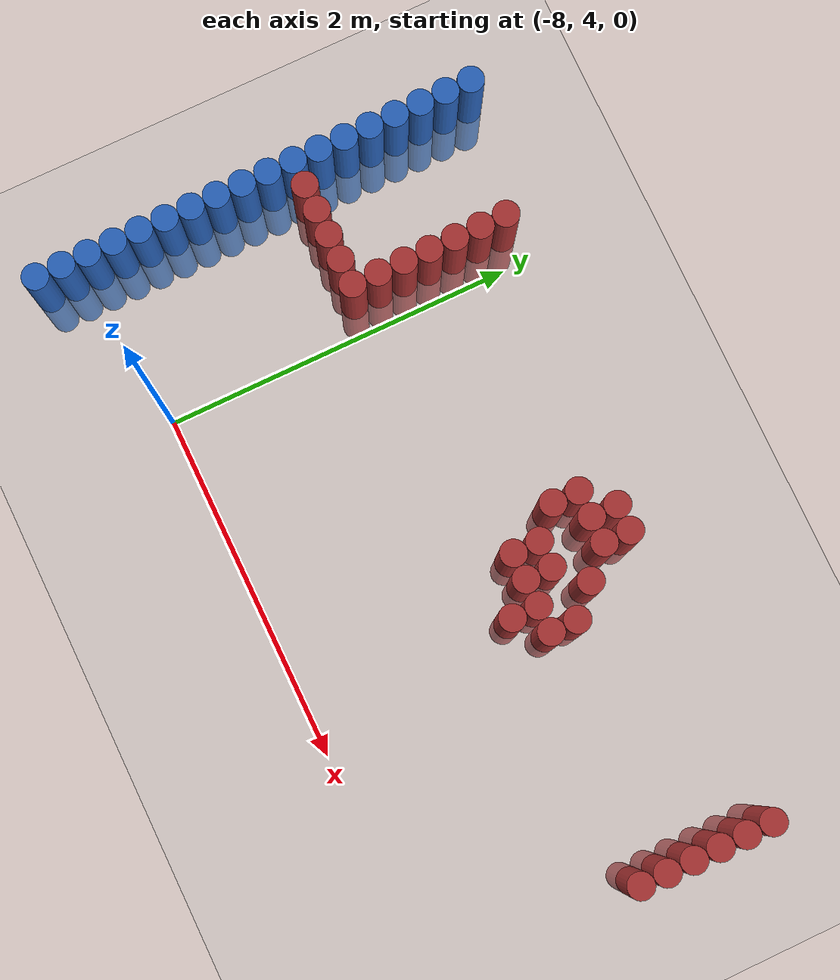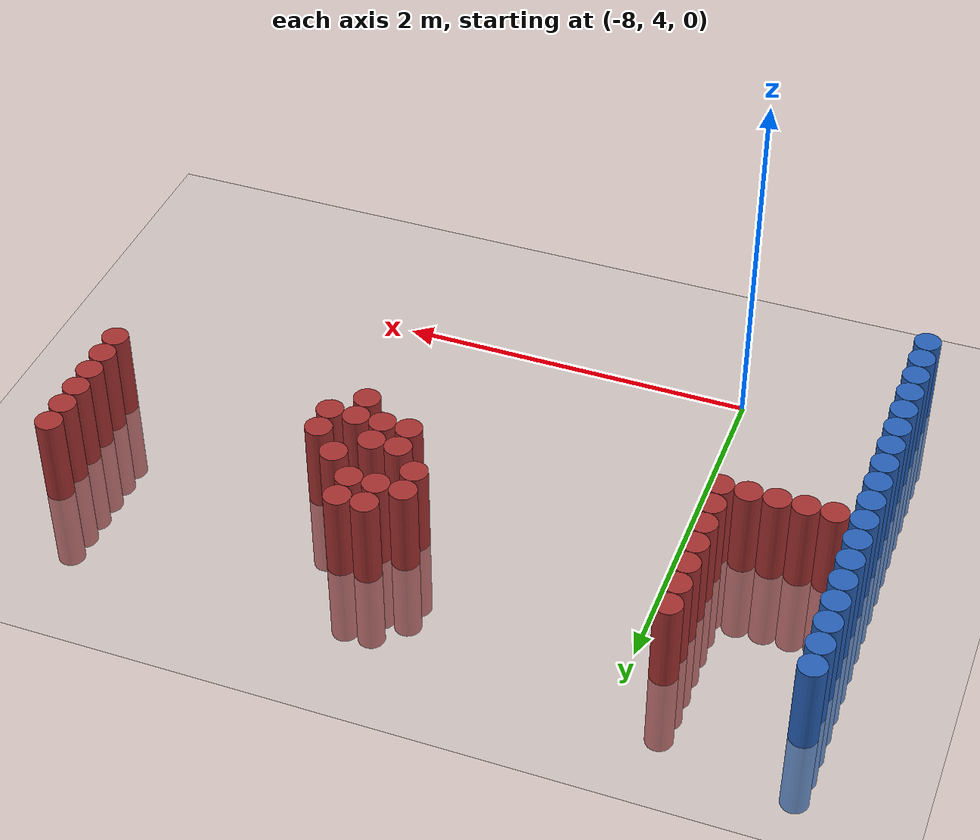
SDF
<sdf version="1.6">
 <world name="default">
  <model name="ground_plane">
   <static>1</static>
   <link name="link">
    <collision name="collision">
     <geometry><plane><normal>0 0 1</normal><size>100 100</size></plane></geometry>
     <surface><friction><ode><mu>100</mu><mu2>50</mu2></ode></friction></surface>
    </collision>
    <visual name="visual">
     <cast_shadows>0</cast_shadows>
     <geometry><plane><normal>0 0 1</normal><size>100 100</size></plane></geometry>
     <material>
      <script><uri>file://media/materials/scripts/gazebo.material</uri><name>Gazebo/Grey</name></script>
     </material>
    </visual>
   </link>
  </model>
  <model name="unit_cylinder_106">
   <static>1</static>
   <pose>-8.925000 3.675000 0.000000 0.000000 0.000000 0.000000</pose>
   <link name="link">
    <inertial>
     <mass>1</mass>
     <inertia><ixx>0.145833</ixx><ixy>0</ixy><ixz>0</ixz><iyy>0.145833</iyy><iyz>0</iyz><izz>0.125</izz></inertia>
    </inertial>
    <collision name="collision">
     <geometry><cylinder><radius>0.075000</radius><length>1</length></cylinder></geometry>
    </collision>
    <visual name="visual">
     <geometry><cylinder><radius>0.075000</radius><length>1</length></cylinder></geometry>
     <material>
      <ambient>0.152000 0.379000 0.720000 1</ambient>
      <diffuse>0.152000 0.379000 0.720000 1</diffuse>
     </material>
     <material>
      <script><name>Gazebo/Grey</name><uri>file://media/materials/scripts/gazebo.material</uri></script>
     </material>
    </visual>
   </link>
  </model>
  <model name="unit_cylinder_108">
   <static>1</static>
   <pose>-8.925000 3.825000 0.000000 0.000000 0.000000 0.000000</pose>
   <link name="link">
    <inertial>
     <mass>1</mass>
     <inertia><ixx>0.145833</ixx><ixy>0</ixy><ixz>0</ixz><iyy>0.145833</iyy><iyz>0</iyz><izz>0.125</izz></inertia>
    </inertial>
    <collision name="collision">
     <geometry><cylinder><radius>0.075000</radius><length>1</length></cylinder></geometry>
    </collision>
    <visual name="visual">
     <geometry><cylinder><radius>0.075000</radius><length>1</length></cylinder></geometry>
     <material>
      <ambient>0.152000 0.379000 0.720000 1</ambient>
      <diffuse>0.152000 0.379000 0.720000 1</diffuse>
     </material>
     <material>
      <script><name>Gazebo/Grey</name><uri>file://media/materials/scripts/gazebo.material</uri></script>
     </material>
    </visual>
   </link>
  </model>
  <model name="unit_cylinder_110">
   <static>1</static>
   <pose>-8.925000 3.975000 0.000000 0.000000 0.000000 0.000000</pose>
   <link name="link">
    <inertial>
     <mass>1</mass>
     <inertia><ixx>0.145833</ixx><ixy>0</ixy><ixz>0</ixz><iyy>0.145833</iyy><iyz>0</iyz><izz>0.125</izz></inertia>
    </inertial>
    <collision name="collision">
     <geometry><cylinder><radius>0.075000</radius><length>1</length></cylinder></geometry>
    </collision>
    <visual name="visual">
     <geometry><cylinder><radius>0.075000</radius><length>1</length></cylinder></geometry>
     <material>
      <ambient>0.152000 0.379000 0.720000 1</ambient>
      <diffuse>0.152000 0.379000 0.720000 1</diffuse>
     </material>
     <material>
      <script><name>Gazebo/Grey</name><uri>file://media/materials/scripts/gazebo.material</uri></script>
     </material>
    </visual>
   </link>
  </model>
  <model name="unit_cylinder_112">
   <static>1</static>
   <pose>-8.925000 4.125000 0.000000 0.000000 0.000000 0.000000</pose>
   <link name="link">
    <inertial>
     <mass>1</mass>
     <inertia><ixx>0.145833</ixx><ixy>0</ixy><ixz>0</ixz><iyy>0.145833</iyy><iyz>0</iyz><izz>0.125</izz></inertia>
    </inertial>
    <collision name="collision">
     <geometry><cylinder><radius>0.075000</radius><length>1</length></cylinder></geometry>
    </collision>
    <visual name="visual">
     <geometry><cylinder><radius>0.075000</radius><length>1</length></cylinder></geometry>
     <material>
      <ambient>0.152000 0.379000 0.720000 1</ambient>
      <diffuse>0.152000 0.379000 0.720000 1</diffuse>
     </material>
     <material>
      <script><name>Gazebo/Grey</name><uri>file://media/materials/scripts/gazebo.material</uri></script>
     </material>
    </visual>
   </link>
  </model>
  <model name="unit_cylinder_114">
   <static>1</static>
   <pose>-8.925000 4.275000 0.000000 0.000000 0.000000 0.000000</pose>
   <link name="link">
    <inertial>
     <mass>1</mass>
     <inertia><ixx>0.145833</ixx><ixy>0</ixy><ixz>0</ixz><iyy>0.145833</iyy><iyz>0</iyz><izz>0.125</izz></inertia>
    </inertial>
    <collision name="collision">
     <geometry><cylinder><radius>0.075000</radius><length>1</length></cylinder></geometry>
    </collision>
    <visual name="visual">
     <geometry><cylinder><radius>0.075000</radius><length>1</length></cylinder></geometry>
     <material>
      <ambient>0.152000 0.379000 0.720000 1</ambient>
      <diffuse>0.152000 0.379000 0.720000 1</diffuse>
     </material>
     <material>
      <script><name>Gazebo/Grey</name><uri>file://media/materials/scripts/gazebo.material</uri></script>
     </material>
    </visual>
   </link>
  </model>
  <model name="unit_cylinder_116">
   <static>1</static>
   <pose>-8.925000 4.425000 0.000000 0.000000 0.000000 0.000000</pose>
   <link name="link">
    <inertial>
     <mass>1</mass>
     <inertia><ixx>0.145833</ixx><ixy>0</ixy><ixz>0</ixz><iyy>0.145833</iyy><iyz>0</iyz><izz>0.125</izz></inertia>
    </inertial>
    <collision name="collision">
     <geometry><cylinder><radius>0.075000</radius><length>1</length></cylinder></geometry>
    </collision>
    <visual name="visual">
     <geometry><cylinder><radius>0.075000</radius><length>1</length></cylinder></geometry>
     <material>
      <ambient>0.152000 0.379000 0.720000 1</ambient>
      <diffuse>0.152000 0.379000 0.720000 1</diffuse>
     </material>
     <material>
      <script><name>Gazebo/Grey</name><uri>file://media/materials/scripts/gazebo.material</uri></script>
     </material>
    </visual>
   </link>
  </model>
  <model name="unit_cylinder_118">
   <static>1</static>
   <pose>-8.925000 4.575000 0.000000 0.000000 0.000000 0.000000</pose>
   <link name="link">
    <inertial>
     <mass>1</mass>
     <inertia><ixx>0.145833</ixx><ixy>0</ixy><ixz>0</ixz><iyy>0.145833</iyy><iyz>0</iyz><izz>0.125</izz></inertia>
    </inertial>
    <collision name="collision">
     <geometry><cylinder><radius>0.075000</radius><length>1</length></cylinder></geometry>
    </collision>
    <visual name="visual">
     <geometry><cylinder><radius>0.075000</radius><length>1</length></cylinder></geometry>
     <material>
      <ambient>0.152000 0.379000 0.720000 1</ambient>
      <diffuse>0.152000 0.379000 0.720000 1</diffuse>
     </material>
     <material>
      <script><name>Gazebo/Grey</name><uri>file://media/materials/scripts/gazebo.material</uri></script>
     </material>
    </visual>
   </link>
  </model>
  <model name="unit_cylinder_120">
   <static>1</static>
   <pose>-8.925000 4.725000 0.000000 0.000000 0.000000 0.000000</pose>
   <link name="link">
    <inertial>
     <mass>1</mass>
     <inertia><ixx>0.145833</ixx><ixy>0</ixy><ixz>0</ixz><iyy>0.145833</iyy><iyz>0</iyz><izz>0.125</izz></inertia>
    </inertial>
    <collision name="collision">
     <geometry><cylinder><radius>0.075000</radius><length>1</length></cylinder></geometry>
    </collision>
    <visual name="visual">
     <geometry><cylinder><radius>0.075000</radius><length>1</length></cylinder></geometry>
     <material>
      <ambient>0.152000 0.379000 0.720000 1</ambient>
      <diffuse>0.152000 0.379000 0.720000 1</diffuse>
     </material>
     <material>
      <script><name>Gazebo/Grey</name><uri>file://media/materials/scripts/gazebo.material</uri></script>
     </material>
    </visual>
   </link>
  </model>
  <model name="unit_cylinder_122">
   <static>1</static>
   <pose>-8.925000 4.875000 0.000000 0.000000 0.000000 0.000000</pose>
   <link name="link">
    <inertial>
     <mass>1</mass>
     <inertia><ixx>0.145833</ixx><ixy>0</ixy><ixz>0</ixz><iyy>0.145833</iyy><iyz>0</iyz><izz>0.125</izz></inertia>
    </inertial>
    <collision name="collision">
     <geometry><cylinder><radius>0.075000</radius><length>1</length></cylinder></geometry>
    </collision>
    <visual name="visual">
     <geometry><cylinder><radius>0.075000</radius><length>1</length></cylinder></geometry>
     <material>
      <ambient>0.152000 0.379000 0.720000 1</ambient>
      <diffuse>0.152000 0.379000 0.720000 1</diffuse>
     </material>
     <material>
      <script><name>Gazebo/Grey</name><uri>file://media/materials/scripts/gazebo.material</uri></script>
     </material>
    </visual>
   </link>
  </model>
  <model name="unit_cylinder_124">
   <static>1</static>
   <pose>-8.925000 5.025000 0.000000 0.000000 0.000000 0.000000</pose>
   <link name="link">
    <inertial>
     <mass>1</mass>
     <inertia><ixx>0.145833</ixx><ixy>0</ixy><ixz>0</ixz><iyy>0.145833</iyy><iyz>0</iyz><izz>0.125</izz></inertia>
    </inertial>
    <collision name="collision">
     <geometry><cylinder><radius>0.075000</radius><length>1</length></cylinder></geometry>
    </collision>
    <visual name="visual">
     <geometry><cylinder><radius>0.075000</radius><length>1</length></cylinder></geometry>
     <material>
      <ambient>0.152000 0.379000 0.720000 1</ambient>
      <diffuse>0.152000 0.379000 0.720000 1</diffuse>
     </material>
     <material>
      <script><name>Gazebo/Grey</name><uri>file://media/materials/scripts/gazebo.material</uri></script>
     </material>
    </visual>
   </link>
  </model>
  <model name="unit_cylinder_125">
   <static>1</static>
   <pose>-8.925000 5.175000 0.000000 0.000000 0.000000 0.000000</pose>
   <link name="link">
    <inertial>
     <mass>1</mass>
     <inertia><ixx>0.145833</ixx><ixy>0</ixy><ixz>0</ixz><iyy>0.145833</iyy><iyz>0</iyz><izz>0.125</izz></inertia>
    </inertial>
    <collision name="collision">
     <geometry><cylinder><radius>0.075000</radius><length>1</length></cylinder></geometry>
    </collision>
    <visual name="visual">
     <geometry><cylinder><radius>0.075000</radius><length>1</length></cylinder></geometry>
     <material>
      <ambient>0.152000 0.379000 0.720000 1</ambient>
      <diffuse>0.152000 0.379000 0.720000 1</diffuse>
     </material>
     <material>
      <script><name>Gazebo/Grey</name><uri>file://media/materials/scripts/gazebo.material</uri></script>
     </material>
    </visual>
   </link>
  </model>
  <model name="unit_cylinder_126">
   <static>1</static>
   <pose>-8.925000 5.325000 0.000000 0.000000 0.000000 0.000000</pose>
   <link name="link">
    <inertial>
     <mass>1</mass>
     <inertia><ixx>0.145833</ixx><ixy>0</ixy><ixz>0</ixz><iyy>0.145833</iyy><iyz>0</iyz><izz>0.125</izz></inertia>
    </inertial>
    <collision name="collision">
     <geometry><cylinder><radius>0.075000</radius><length>1</length></cylinder></geometry>
    </collision>
    <visual name="visual">
     <geometry><cylinder><radius>0.075000</radius><length>1</length></cylinder></geometry>
     <material>
      <ambient>0.152000 0.379000 0.720000 1</ambient>
      <diffuse>0.152000 0.379000 0.720000 1</diffuse>
     </material>
     <material>
      <script><name>Gazebo/Grey</name><uri>file://media/materials/scripts/gazebo.material</uri></script>
     </material>
    </visual>
   </link>
  </model>
  <model name="unit_cylinder_127">
   <static>1</static>
   <pose>-8.925000 5.475000 0.000000 0.000000 0.000000 0.000000</pose>
   <link name="link">
    <inertial>
     <mass>1</mass>
     <inertia><ixx>0.145833</ixx><ixy>0</ixy><ixz>0</ixz><iyy>0.145833</iyy><iyz>0</iyz><izz>0.125</izz></inertia>
    </inertial>
    <collision name="collision">
     <geometry><cylinder><radius>0.075000</radius><length>1</length></cylinder></geometry>
    </collision>
    <visual name="visual">
     <geometry><cylinder><radius>0.075000</radius><length>1</length></cylinder></geometry>
     <material>
      <ambient>0.152000 0.379000 0.720000 1</ambient>
      <diffuse>0.152000 0.379000 0.720000 1</diffuse>
     </material>
     <material>
      <script><name>Gazebo/Grey</name><uri>file://media/materials/scripts/gazebo.material</uri></script>
     </material>
    </visual>
   </link>
  </model>
  <model name="unit_cylinder_128">
   <static>1</static>
   <pose>-8.925000 5.625000 0.000000 0.000000 0.000000 0.000000</pose>
   <link name="link">
    <inertial>
     <mass>1</mass>
     <inertia><ixx>0.145833</ixx><ixy>0</ixy><ixz>0</ixz><iyy>0.145833</iyy><iyz>0</iyz><izz>0.125</izz></inertia>
    </inertial>
    <collision name="collision">
     <geometry><cylinder><radius>0.075000</radius><length>1</length></cylinder></geometry>
    </collision>
    <visual name="visual">
     <geometry><cylinder><radius>0.075000</radius><length>1</length></cylinder></geometry>
     <material>
      <ambient>0.152000 0.379000 0.720000 1</ambient>
      <diffuse>0.152000 0.379000 0.720000 1</diffuse>
     </material>
     <material>
      <script><name>Gazebo/Grey</name><uri>file://media/materials/scripts/gazebo.material</uri></script>
     </material>
    </visual>
   </link>
  </model>
  <model name="unit_cylinder_129">
   <static>1</static>
   <pose>-8.925000 5.775000 0.000000 0.000000 0.000000 0.000000</pose>
   <link name="link">
    <inertial>
     <mass>1</mass>
     <inertia><ixx>0.145833</ixx><ixy>0</ixy><ixz>0</ixz><iyy>0.145833</iyy><iyz>0</iyz><izz>0.125</izz></inertia>
    </inertial>
    <collision name="collision">
     <geometry><cylinder><radius>0.075000</radius><length>1</length></cylinder></geometry>
    </collision>
    <visual name="visual">
     <geometry><cylinder><radius>0.075000</radius><length>1</length></cylinder></geometry>
     <material>
      <ambient>0.152000 0.379000 0.720000 1</ambient>
      <diffuse>0.152000 0.379000 0.720000 1</diffuse>
     </material>
     <material>
      <script><name>Gazebo/Grey</name><uri>file://media/materials/scripts/gazebo.material</uri></script>
     </material>
    </visual>
   </link>
  </model>
  <model name="unit_cylinder_130">
   <static>1</static>
   <pose>-8.925000 5.925000 0.000000 0.000000 0.000000 0.000000</pose>
   <link name="link">
    <inertial>
     <mass>1</mass>
     <inertia><ixx>0.145833</ixx><ixy>0</ixy><ixz>0</ixz><iyy>0.145833</iyy><iyz>0</iyz><izz>0.125</izz></inertia>
    </inertial>
    <collision name="collision">
     <geometry><cylinder><radius>0.075000</radius><length>1</length></cylinder></geometry>
    </collision>
    <visual name="visual">
     <geometry><cylinder><radius>0.075000</radius><length>1</length></cylinder></geometry>
     <material>
      <ambient>0.152000 0.379000 0.720000 1</ambient>
      <diffuse>0.152000 0.379000 0.720000 1</diffuse>
     </material>
     <material>
      <script><name>Gazebo/Grey</name><uri>file://media/materials/scripts/gazebo.material</uri></script>
     </material>
    </visual>
   </link>
  </model>
  <model name="unit_cylinder_131">
   <static>1</static>
   <pose>-8.925000 6.075000 0.000000 0.000000 0.000000 0.000000</pose>
   <link name="link">
    <inertial>
     <mass>1</mass>
     <inertia><ixx>0.145833</ixx><ixy>0</ixy><ixz>0</ixz><iyy>0.145833</iyy><iyz>0</iyz><izz>0.125</izz></inertia>
    </inertial>
    <collision name="collision">
     <geometry><cylinder><radius>0.075000</radius><length>1</length></cylinder></geometry>
    </collision>
    <visual name="visual">
     <geometry><cylinder><radius>0.075000</radius><length>1</length></cylinder></geometry>
     <material>
      <ambient>0.152000 0.379000 0.720000 1</ambient>
      <diffuse>0.152000 0.379000 0.720000 1</diffuse>
     </material>
     <material>
      <script><name>Gazebo/Grey</name><uri>file://media/materials/scripts/gazebo.material</uri></script>
     </material>
    </visual>
   </link>
  </model>
  <model name="unit_cylinder_132">
   <static>1</static>
   <pose>-8.925000 6.225000 0.000000 0.000000 0.000000 0.000000</pose>
   <link name="link">
    <inertial>
     <mass>1</mass>
     <inertia><ixx>0.145833</ixx><ixy>0</ixy><ixz>0</ixz><iyy>0.145833</iyy><iyz>0</iyz><izz>0.125</izz></inertia>
    </inertial>
    <collision name="collision">
     <geometry><cylinder><radius>0.075000</radius><length>1</length></cylinder></geometry>
    </collision>
    <visual name="visual">
     <geometry><cylinder><radius>0.075000</radius><length>1</length></cylinder></geometry>
     <material>
      <ambient>0.152000 0.379000 0.720000 1</ambient>
      <diffuse>0.152000 0.379000 0.720000 1</diffuse>
     </material>
     <material>
      <script><name>Gazebo/Grey</name><uri>file://media/materials/scripts/gazebo.material</uri></script>
     </material>
    </visual>
   </link>
  </model>
  <model name="unit_cylinder_155">
   <static>1</static>
   <pose>-8.775000 5.175000 0.000000 0.000000 0.000000 0.000000</pose>
   <link name="link">
    <inertial>
     <mass>1</mass>
     <inertia><ixx>0.145833</ixx><ixy>0</ixy><ixz>0</ixz><iyy>0.145833</iyy><iyz>0</iyz><izz>0.125</izz></inertia>
    </inertial>
    <collision name="collision">
     <geometry><cylinder><radius>0.075000</radius><length>1</length></cylinder></geometry>
    </collision>
    <visual name="visual">
     <geometry><cylinder><radius>0.075000</radius><length>1</length></cylinder></geometry>
     <material>
      <ambient>0.648000 0.192000 0.192000 1</ambient>
      <diffuse>0.648000 0.192000 0.192000 1</diffuse>
     </material>
     <material>
      <script><name>Gazebo/Grey</name><uri>file://media/materials/scripts/gazebo.material</uri></script>
     </material>
    </visual>
   </link>
  </model>
  <model name="unit_cylinder_157">
   <static>1</static>
   <pose>-8.625000 5.175000 0.000000 0.000000 0.000000 0.000000</pose>
   <link name="link">
    <inertial>
     <mass>1</mass>
     <inertia><ixx>0.145833</ixx><ixy>0</ixy><ixz>0</ixz><iyy>0.145833</iyy><iyz>0</iyz><izz>0.125</izz></inertia>
    </inertial>
    <collision name="collision">
     <geometry><cylinder><radius>0.075000</radius><length>1</length></cylinder></geometry>
    </collision>
    <visual name="visual">
     <geometry><cylinder><radius>0.075000</radius><length>1</length></cylinder></geometry>
     <material>
      <ambient>0.648000 0.192000 0.192000 1</ambient>
      <diffuse>0.648000 0.192000 0.192000 1</diffuse>
     </material>
     <material>
      <script><name>Gazebo/Grey</name><uri>file://media/materials/scripts/gazebo.material</uri></script>
     </material>
    </visual>
   </link>
  </model>
  <model name="unit_cylinder_159">
   <static>1</static>
   <pose>-8.475000 5.175000 0.000000 0.000000 0.000000 0.000000</pose>
   <link name="link">
    <inertial>
     <mass>1</mass>
     <inertia><ixx>0.145833</ixx><ixy>0</ixy><ixz>0</ixz><iyy>0.145833</iyy><iyz>0</iyz><izz>0.125</izz></inertia>
    </inertial>
    <collision name="collision">
     <geometry><cylinder><radius>0.075000</radius><length>1</length></cylinder></geometry>
    </collision>
    <visual name="visual">
     <geometry><cylinder><radius>0.075000</radius><length>1</length></cylinder></geometry>
     <material>
      <ambient>0.648000 0.192000 0.192000 1</ambient>
      <diffuse>0.648000 0.192000 0.192000 1</diffuse>
     </material>
     <material>
      <script><name>Gazebo/Grey</name><uri>file://media/materials/scripts/gazebo.material</uri></script>
     </material>
    </visual>
   </link>
  </model>
  <model name="unit_cylinder_161">
   <static>1</static>
   <pose>-8.325000 5.175000 0.000000 0.000000 0.000000 0.000000</pose>
   <link name="link">
    <inertial>
     <mass>1</mass>
     <inertia><ixx>0.145833</ixx><ixy>0</ixy><ixz>0</ixz><iyy>0.145833</iyy><iyz>0</iyz><izz>0.125</izz></inertia>
    </inertial>
    <collision name="collision">
     <geometry><cylinder><radius>0.075000</radius><length>1</length></cylinder></geometry>
    </collision>
    <visual name="visual">
     <geometry><cylinder><radius>0.075000</radius><length>1</length></cylinder></geometry>
     <material>
      <ambient>0.648000 0.192000 0.192000 1</ambient>
      <diffuse>0.648000 0.192000 0.192000 1</diffuse>
     </material>
     <material>
      <script><name>Gazebo/Grey</name><uri>file://media/materials/scripts/gazebo.material</uri></script>
     </material>
    </visual>
   </link>
  </model>
  <model name="unit_cylinder_163">
   <static>1</static>
   <pose>-8.175000 5.175000 0.000000 0.000000 0.000000 0.000000</pose>
   <link name="link">
    <inertial>
     <mass>1</mass>
     <inertia><ixx>0.145833</ixx><ixy>0</ixy><ixz>0</ixz><iyy>0.145833</iyy><iyz>0</iyz><izz>0.125</izz></inertia>
    </inertial>
    <collision name="collision">
     <geometry><cylinder><radius>0.075000</radius><length>1</length></cylinder></geometry>
    </collision>
    <visual name="visual">
     <geometry><cylinder><radius>0.075000</radius><length>1</length></cylinder></geometry>
     <material>
      <ambient>0.648000 0.192000 0.192000 1</ambient>
      <diffuse>0.648000 0.192000 0.192000 1</diffuse>
     </material>
     <material>
      <script><name>Gazebo/Grey</name><uri>file://media/materials/scripts/gazebo.material</uri></script>
     </material>
    </visual>
   </link>
  </model>
  <model name="unit_cylinder_164">
   <static>1</static>
   <pose>-8.175000 5.325000 0.000000 0.000000 0.000000 0.000000</pose>
   <link name="link">
    <inertial>
     <mass>1</mass>
     <inertia><ixx>0.145833</ixx><ixy>0</ixy><ixz>0</ixz><iyy>0.145833</iyy><iyz>0</iyz><izz>0.125</izz></inertia>
    </inertial>
    <collision name="collision">
     <geometry><cylinder><radius>0.075000</radius><length>1</length></cylinder></geometry>
    </collision>
    <visual name="visual">
     <geometry><cylinder><radius>0.075000</radius><length>1</length></cylinder></geometry>
     <material>
      <ambient>0.648000 0.192000 0.192000 1</ambient>
      <diffuse>0.648000 0.192000 0.192000 1</diffuse>
     </material>
     <material>
      <script><name>Gazebo/Grey</name><uri>file://media/materials/scripts/gazebo.material</uri></script>
     </material>
    </visual>
   </link>
  </model>
  <model name="unit_cylinder_165">
   <static>1</static>
   <pose>-8.175000 5.475000 0.000000 0.000000 0.000000 0.000000</pose>
   <link name="link">
    <inertial>
     <mass>1</mass>
     <inertia><ixx>0.145833</ixx><ixy>0</ixy><ixz>0</ixz><iyy>0.145833</iyy><iyz>0</iyz><izz>0.125</izz></inertia>
    </inertial>
    <collision name="collision">
     <geometry><cylinder><radius>0.075000</radius><length>1</length></cylinder></geometry>
    </collision>
    <visual name="visual">
     <geometry><cylinder><radius>0.075000</radius><length>1</length></cylinder></geometry>
     <material>
      <ambient>0.648000 0.192000 0.192000 1</ambient>
      <diffuse>0.648000 0.192000 0.192000 1</diffuse>
     </material>
     <material>
      <script><name>Gazebo/Grey</name><uri>file://media/materials/scripts/gazebo.material</uri></script>
     </material>
    </visual>
   </link>
  </model>
  <model name="unit_cylinder_166">
   <static>1</static>
   <pose>-8.175000 5.625000 0.000000 0.000000 0.000000 0.000000</pose>
   <link name="link">
    <inertial>
     <mass>1</mass>
     <inertia><ixx>0.145833</ixx><ixy>0</ixy><ixz>0</ixz><iyy>0.145833</iyy><iyz>0</iyz><izz>0.125</izz></inertia>
    </inertial>
    <collision name="collision">
     <geometry><cylinder><radius>0.075000</radius><length>1</length></cylinder></geometry>
    </collision>
    <visual name="visual">
     <geometry><cylinder><radius>0.075000</radius><length>1</length></cylinder></geometry>
     <material>
      <ambient>0.648000 0.192000 0.192000 1</ambient>
      <diffuse>0.648000 0.192000 0.192000 1</diffuse>
     </material>
     <material>
      <script><name>Gazebo/Grey</name><uri>file://media/materials/scripts/gazebo.material</uri></script>
     </material>
    </visual>
   </link>
  </model>
  <model name="unit_cylinder_167">
   <static>1</static>
   <pose>-8.175000 5.775000 0.000000 0.000000 0.000000 0.000000</pose>
   <link name="link">
    <inertial>
     <mass>1</mass>
     <inertia><ixx>0.145833</ixx><ixy>0</ixy><ixz>0</ixz><iyy>0.145833</iyy><iyz>0</iyz><izz>0.125</izz></inertia>
    </inertial>
    <collision name="collision">
     <geometry><cylinder><radius>0.075000</radius><length>1</length></cylinder></geometry>
    </collision>
    <visual name="visual">
     <geometry><cylinder><radius>0.075000</radius><length>1</length></cylinder></geometry>
     <material>
      <ambient>0.648000 0.192000 0.192000 1</ambient>
      <diffuse>0.648000 0.192000 0.192000 1</diffuse>
     </material>
     <material>
      <script><name>Gazebo/Grey</name><uri>file://media/materials/scripts/gazebo.material</uri></script>
     </material>
    </visual>
   </link>
  </model>
  <model name="unit_cylinder_168">
   <static>1</static>
   <pose>-8.175000 5.925000 0.000000 0.000000 0.000000 0.000000</pose>
   <link name="link">
    <inertial>
     <mass>1</mass>
     <inertia><ixx>0.145833</ixx><ixy>0</ixy><ixz>0</ixz><iyy>0.145833</iyy><iyz>0</iyz><izz>0.125</izz></inertia>
    </inertial>
    <collision name="collision">
     <geometry><cylinder><radius>0.075000</radius><length>1</length></cylinder></geometry>
    </collision>
    <visual name="visual">
     <geometry><cylinder><radius>0.075000</radius><length>1</length></cylinder></geometry>
     <material>
      <ambient>0.648000 0.192000 0.192000 1</ambient>
      <diffuse>0.648000 0.192000 0.192000 1</diffuse>
     </material>
     <material>
      <script><name>Gazebo/Grey</name><uri>file://media/materials/scripts/gazebo.material</uri></script>
     </material>
    </visual>
   </link>
  </model>
  <model name="unit_cylinder_169">
   <static>1</static>
   <pose>-8.175000 6.075000 0.000000 0.000000 0.000000 0.000000</pose>
   <link name="link">
    <inertial>
     <mass>1</mass>
     <inertia><ixx>0.145833</ixx><ixy>0</ixy><ixz>0</ixz><iyy>0.145833</iyy><iyz>0</iyz><izz>0.125</izz></inertia>
    </inertial>
    <collision name="collision">
     <geometry><cylinder><radius>0.075000</radius><length>1</length></cylinder></geometry>
    </collision>
    <visual name="visual">
     <geometry><cylinder><radius>0.075000</radius><length>1</length></cylinder></geometry>
     <material>
      <ambient>0.648000 0.192000 0.192000 1</ambient>
      <diffuse>0.648000 0.192000 0.192000 1</diffuse>
     </material>
     <material>
      <script><name>Gazebo/Grey</name><uri>file://media/materials/scripts/gazebo.material</uri></script>
     </material>
    </visual>
   </link>
  </model>
  <model name="unit_cylinder_200">
   <static>1</static>
   <pose>-6.675000 5.625000 0.000000 0.000000 0.000000 0.000000</pose>
   <link name="link">
    <inertial>
     <mass>1</mass>
     <inertia><ixx>0.145833</ixx><ixy>0</ixy><ixz>0</ixz><iyy>0.145833</iyy><iyz>0</iyz><izz>0.125</izz></inertia>
    </inertial>
    <collision name="collision">
     <geometry><cylinder><radius>0.075000</radius><length>1</length></cylinder></geometry>
    </collision>
    <visual name="visual">
     <geometry><cylinder><radius>0.075000</radius><length>1</length></cylinder></geometry>
     <material>
      <ambient>0.648000 0.192000 0.192000 1</ambient>
      <diffuse>0.648000 0.192000 0.192000 1</diffuse>
     </material>
     <material>
      <script><name>Gazebo/Grey</name><uri>file://media/materials/scripts/gazebo.material</uri></script>
     </material>
    </visual>
   </link>
  </model>
  <model name="unit_cylinder_201">
   <static>1</static>
   <pose>-6.675000 5.775000 0.000000 0.000000 0.000000 0.000000</pose>
   <link name="link">
    <inertial>
     <mass>1</mass>
     <inertia><ixx>0.145833</ixx><ixy>0</ixy><ixz>0</ixz><iyy>0.145833</iyy><iyz>0</iyz><izz>0.125</izz></inertia>
    </inertial>
    <collision name="collision">
     <geometry><cylinder><radius>0.075000</radius><length>1</length></cylinder></geometry>
    </collision>
    <visual name="visual">
     <geometry><cylinder><radius>0.075000</radius><length>1</length></cylinder></geometry>
     <material>
      <ambient>0.648000 0.192000 0.192000 1</ambient>
      <diffuse>0.648000 0.192000 0.192000 1</diffuse>
     </material>
     <material>
      <script><name>Gazebo/Grey</name><uri>file://media/materials/scripts/gazebo.material</uri></script>
     </material>
    </visual>
   </link>
  </model>
  <model name="unit_cylinder_213">
   <static>1</static>
   <pose>-6.525000 5.325000 0.000000 0.000000 0.000000 0.000000</pose>
   <link name="link">
    <inertial>
     <mass>1</mass>
     <inertia><ixx>0.145833</ixx><ixy>0</ixy><ixz>0</ixz><iyy>0.145833</iyy><iyz>0</iyz><izz>0.125</izz></inertia>
    </inertial>
    <collision name="collision">
     <geometry><cylinder><radius>0.075000</radius><length>1</length></cylinder></geometry>
    </collision>
    <visual name="visual">
     <geometry><cylinder><radius>0.075000</radius><length>1</length></cylinder></geometry>
     <material>
      <ambient>0.648000 0.192000 0.192000 1</ambient>
      <diffuse>0.648000 0.192000 0.192000 1</diffuse>
     </material>
     <material>
      <script><name>Gazebo/Grey</name><uri>file://media/materials/scripts/gazebo.material</uri></script>
     </material>
    </visual>
   </link>
  </model>
  <model name="unit_cylinder_214">
   <static>1</static>
   <pose>-6.525000 5.475000 0.000000 0.000000 0.000000 0.000000</pose>
   <link name="link">
    <inertial>
     <mass>1</mass>
     <inertia><ixx>0.145833</ixx><ixy>0</ixy><ixz>0</ixz><iyy>0.145833</iyy><iyz>0</iyz><izz>0.125</izz></inertia>
    </inertial>
    <collision name="collision">
     <geometry><cylinder><radius>0.075000</radius><length>1</length></cylinder></geometry>
    </collision>
    <visual name="visual">
     <geometry><cylinder><radius>0.075000</radius><length>1</length></cylinder></geometry>
     <material>
      <ambient>0.648000 0.192000 0.192000 1</ambient>
      <diffuse>0.648000 0.192000 0.192000 1</diffuse>
     </material>
     <material>
      <script><name>Gazebo/Grey</name><uri>file://media/materials/scripts/gazebo.material</uri></script>
     </material>
    </visual>
   </link>
  </model>
  <model name="unit_cylinder_215">
   <static>1</static>
   <pose>-6.525000 5.775000 0.000000 0.000000 0.000000 0.000000</pose>
   <link name="link">
    <inertial>
     <mass>1</mass>
     <inertia><ixx>0.145833</ixx><ixy>0</ixy><ixz>0</ixz><iyy>0.145833</iyy><iyz>0</iyz><izz>0.125</izz></inertia>
    </inertial>
    <collision name="collision">
     <geometry><cylinder><radius>0.075000</radius><length>1</length></cylinder></geometry>
    </collision>
    <visual name="visual">
     <geometry><cylinder><radius>0.075000</radius><length>1</length></cylinder></geometry>
     <material>
      <ambient>0.648000 0.192000 0.192000 1</ambient>
      <diffuse>0.648000 0.192000 0.192000 1</diffuse>
     </material>
     <material>
      <script><name>Gazebo/Grey</name><uri>file://media/materials/scripts/gazebo.material</uri></script>
     </material>
    </visual>
   </link>
  </model>
  <model name="unit_cylinder_216">
   <static>1</static>
   <pose>-6.525000 5.925000 0.000000 0.000000 0.000000 0.000000</pose>
   <link name="link">
    <inertial>
     <mass>1</mass>
     <inertia><ixx>0.145833</ixx><ixy>0</ixy><ixz>0</ixz><iyy>0.145833</iyy><iyz>0</iyz><izz>0.125</izz></inertia>
    </inertial>
    <collision name="collision">
     <geometry><cylinder><radius>0.075000</radius><length>1</length></cylinder></geometry>
    </collision>
    <visual name="visual">
     <geometry><cylinder><radius>0.075000</radius><length>1</length></cylinder></geometry>
     <material>
      <ambient>0.648000 0.192000 0.192000 1</ambient>
      <diffuse>0.648000 0.192000 0.192000 1</diffuse>
     </material>
     <material>
      <script><name>Gazebo/Grey</name><uri>file://media/materials/scripts/gazebo.material</uri></script>
     </material>
    </visual>
   </link>
  </model>
  <model name="unit_cylinder_228">
   <static>1</static>
   <pose>-6.375000 5.325000 0.000000 0.000000 0.000000 0.000000</pose>
   <link name="link">
    <inertial>
     <mass>1</mass>
     <inertia><ixx>0.145833</ixx><ixy>0</ixy><ixz>0</ixz><iyy>0.145833</iyy><iyz>0</iyz><izz>0.125</izz></inertia>
    </inertial>
    <collision name="collision">
     <geometry><cylinder><radius>0.075000</radius><length>1</length></cylinder></geometry>
    </collision>
    <visual name="visual">
     <geometry><cylinder><radius>0.075000</radius><length>1</length></cylinder></geometry>
     <material>
      <ambient>0.648000 0.192000 0.192000 1</ambient>
      <diffuse>0.648000 0.192000 0.192000 1</diffuse>
     </material>
     <material>
      <script><name>Gazebo/Grey</name><uri>file://media/materials/scripts/gazebo.material</uri></script>
     </material>
    </visual>
   </link>
  </model>
  <model name="unit_cylinder_229">
   <static>1</static>
   <pose>-6.375000 5.475000 0.000000 0.000000 0.000000 0.000000</pose>
   <link name="link">
    <inertial>
     <mass>1</mass>
     <inertia><ixx>0.145833</ixx><ixy>0</ixy><ixz>0</ixz><iyy>0.145833</iyy><iyz>0</iyz><izz>0.125</izz></inertia>
    </inertial>
    <collision name="collision">
     <geometry><cylinder><radius>0.075000</radius><length>1</length></cylinder></geometry>
    </collision>
    <visual name="visual">
     <geometry><cylinder><radius>0.075000</radius><length>1</length></cylinder></geometry>
     <material>
      <ambient>0.648000 0.192000 0.192000 1</ambient>
      <diffuse>0.648000 0.192000 0.192000 1</diffuse>
     </material>
     <material>
      <script><name>Gazebo/Grey</name><uri>file://media/materials/scripts/gazebo.material</uri></script>
     </material>
    </visual>
   </link>
  </model>
  <model name="unit_cylinder_230">
   <static>1</static>
   <pose>-6.375000 5.775000 0.000000 0.000000 0.000000 0.000000</pose>
   <link name="link">
    <inertial>
     <mass>1</mass>
     <inertia><ixx>0.145833</ixx><ixy>0</ixy><ixz>0</ixz><iyy>0.145833</iyy><iyz>0</iyz><izz>0.125</izz></inertia>
    </inertial>
    <collision name="collision">
     <geometry><cylinder><radius>0.075000</radius><length>1</length></cylinder></geometry>
    </collision>
    <visual name="visual">
     <geometry><cylinder><radius>0.075000</radius><length>1</length></cylinder></geometry>
     <material>
      <ambient>0.648000 0.192000 0.192000 1</ambient>
      <diffuse>0.648000 0.192000 0.192000 1</diffuse>
     </material>
     <material>
      <script><name>Gazebo/Grey</name><uri>file://media/materials/scripts/gazebo.material</uri></script>
     </material>
    </visual>
   </link>
  </model>
  <model name="unit_cylinder_231">
   <static>1</static>
   <pose>-6.375000 5.925000 0.000000 0.000000 0.000000 0.000000</pose>
   <link name="link">
    <inertial>
     <mass>1</mass>
     <inertia><ixx>0.145833</ixx><ixy>0</ixy><ixz>0</ixz><iyy>0.145833</iyy><iyz>0</iyz><izz>0.125</izz></inertia>
    </inertial>
    <collision name="collision">
     <geometry><cylinder><radius>0.075000</radius><length>1</length></cylinder></geometry>
    </collision>
    <visual name="visual">
     <geometry><cylinder><radius>0.075000</radius><length>1</length></cylinder></geometry>
     <material>
      <ambient>0.648000 0.192000 0.192000 1</ambient>
      <diffuse>0.648000 0.192000 0.192000 1</diffuse>
     </material>
     <material>
      <script><name>Gazebo/Grey</name><uri>file://media/materials/scripts/gazebo.material</uri></script>
     </material>
    </visual>
   </link>
  </model>
  <model name="unit_cylinder_241">
   <static>1</static>
   <pose>-6.225000 5.175000 0.000000 0.000000 0.000000 0.000000</pose>
   <link name="link">
    <inertial>
     <mass>1</mass>
     <inertia><ixx>0.145833</ixx><ixy>0</ixy><ixz>0</ixz><iyy>0.145833</iyy><iyz>0</iyz><izz>0.125</izz></inertia>
    </inertial>
    <collision name="collision">
     <geometry><cylinder><radius>0.075000</radius><length>1</length></cylinder></geometry>
    </collision>
    <visual name="visual">
     <geometry><cylinder><radius>0.075000</radius><length>1</length></cylinder></geometry>
     <material>
      <ambient>0.648000 0.192000 0.192000 1</ambient>
      <diffuse>0.648000 0.192000 0.192000 1</diffuse>
     </material>
     <material>
      <script><name>Gazebo/Grey</name><uri>file://media/materials/scripts/gazebo.material</uri></script>
     </material>
    </visual>
   </link>
  </model>
  <model name="unit_cylinder_242">
   <static>1</static>
   <pose>-6.225000 5.325000 0.000000 0.000000 0.000000 0.000000</pose>
   <link name="link">
    <inertial>
     <mass>1</mass>
     <inertia><ixx>0.145833</ixx><ixy>0</ixy><ixz>0</ixz><iyy>0.145833</iyy><iyz>0</iyz><izz>0.125</izz></inertia>
    </inertial>
    <collision name="collision">
     <geometry><cylinder><radius>0.075000</radius><length>1</length></cylinder></geometry>
    </collision>
    <visual name="visual">
     <geometry><cylinder><radius>0.075000</radius><length>1</length></cylinder></geometry>
     <material>
      <ambient>0.648000 0.192000 0.192000 1</ambient>
      <diffuse>0.648000 0.192000 0.192000 1</diffuse>
     </material>
     <material>
      <script><name>Gazebo/Grey</name><uri>file://media/materials/scripts/gazebo.material</uri></script>
     </material>
    </visual>
   </link>
  </model>
  <model name="unit_cylinder_243">
   <static>1</static>
   <pose>-6.225000 5.625000 0.000000 0.000000 0.000000 0.000000</pose>
   <link name="link">
    <inertial>
     <mass>1</mass>
     <inertia><ixx>0.145833</ixx><ixy>0</ixy><ixz>0</ixz><iyy>0.145833</iyy><iyz>0</iyz><izz>0.125</izz></inertia>
    </inertial>
    <collision name="collision">
     <geometry><cylinder><radius>0.075000</radius><length>1</length></cylinder></geometry>
    </collision>
    <visual name="visual">
     <geometry><cylinder><radius>0.075000</radius><length>1</length></cylinder></geometry>
     <material>
      <ambient>0.648000 0.192000 0.192000 1</ambient>
      <diffuse>0.648000 0.192000 0.192000 1</diffuse>
     </material>
     <material>
      <script><name>Gazebo/Grey</name><uri>file://media/materials/scripts/gazebo.material</uri></script>
     </material>
    </visual>
   </link>
  </model>
  <model name="unit_cylinder_255">
   <static>1</static>
   <pose>-6.075000 5.325000 0.000000 0.000000 0.000000 0.000000</pose>
   <link name="link">
    <inertial>
     <mass>1</mass>
     <inertia><ixx>0.145833</ixx><ixy>0</ixy><ixz>0</ixz><iyy>0.145833</iyy><iyz>0</iyz><izz>0.125</izz></inertia>
    </inertial>
    <collision name="collision">
     <geometry><cylinder><radius>0.075000</radius><length>1</length></cylinder></geometry>
    </collision>
    <visual name="visual">
     <geometry><cylinder><radius>0.075000</radius><length>1</length></cylinder></geometry>
     <material>
      <ambient>0.648000 0.192000 0.192000 1</ambient>
      <diffuse>0.648000 0.192000 0.192000 1</diffuse>
     </material>
     <material>
      <script><name>Gazebo/Grey</name><uri>file://media/materials/scripts/gazebo.material</uri></script>
     </material>
    </visual>
   </link>
  </model>
  <model name="unit_cylinder_256">
   <static>1</static>
   <pose>-6.075000 5.475000 0.000000 0.000000 0.000000 0.000000</pose>
   <link name="link">
    <inertial>
     <mass>1</mass>
     <inertia><ixx>0.145833</ixx><ixy>0</ixy><ixz>0</ixz><iyy>0.145833</iyy><iyz>0</iyz><izz>0.125</izz></inertia>
    </inertial>
    <collision name="collision">
     <geometry><cylinder><radius>0.075000</radius><length>1</length></cylinder></geometry>
    </collision>
    <visual name="visual">
     <geometry><cylinder><radius>0.075000</radius><length>1</length></cylinder></geometry>
     <material>
      <ambient>0.648000 0.192000 0.192000 1</ambient>
      <diffuse>0.648000 0.192000 0.192000 1</diffuse>
     </material>
     <material>
      <script><name>Gazebo/Grey</name><uri>file://media/materials/scripts/gazebo.material</uri></script>
     </material>
    </visual>
   </link>
  </model>
  <model name="unit_cylinder_286">
   <static>1</static>
   <pose>-4.725000 5.175000 0.000000 0.000000 0.000000 0.000000</pose>
   <link name="link">
    <inertial>
     <mass>1</mass>
     <inertia><ixx>0.145833</ixx><ixy>0</ixy><ixz>0</ixz><iyy>0.145833</iyy><iyz>0</iyz><izz>0.125</izz></inertia>
    </inertial>
    <collision name="collision">
     <geometry><cylinder><radius>0.075000</radius><length>1</length></cylinder></geometry>
    </collision>
    <visual name="visual">
     <geometry><cylinder><radius>0.075000</radius><length>1</length></cylinder></geometry>
     <material>
      <ambient>0.648000 0.192000 0.192000 1</ambient>
      <diffuse>0.648000 0.192000 0.192000 1</diffuse>
     </material>
     <material>
      <script><name>Gazebo/Grey</name><uri>file://media/materials/scripts/gazebo.material</uri></script>
     </material>
    </visual>
   </link>
  </model>
  <model name="unit_cylinder_287">
   <static>1</static>
   <pose>-4.725000 5.325000 0.000000 0.000000 0.000000 0.000000</pose>
   <link name="link">
    <inertial>
     <mass>1</mass>
     <inertia><ixx>0.145833</ixx><ixy>0</ixy><ixz>0</ixz><iyy>0.145833</iyy><iyz>0</iyz><izz>0.125</izz></inertia>
    </inertial>
    <collision name="collision">
     <geometry><cylinder><radius>0.075000</radius><length>1</length></cylinder></geometry>
    </collision>
    <visual name="visual">
     <geometry><cylinder><radius>0.075000</radius><length>1</length></cylinder></geometry>
     <material>
      <ambient>0.648000 0.192000 0.192000 1</ambient>
      <diffuse>0.648000 0.192000 0.192000 1</diffuse>
     </material>
     <material>
      <script><name>Gazebo/Grey</name><uri>file://media/materials/scripts/gazebo.material</uri></script>
     </material>
    </visual>
   </link>
  </model>
  <model name="unit_cylinder_288">
   <static>1</static>
   <pose>-4.725000 5.475000 0.000000 0.000000 0.000000 0.000000</pose>
   <link name="link">
    <inertial>
     <mass>1</mass>
     <inertia><ixx>0.145833</ixx><ixy>0</ixy><ixz>0</ixz><iyy>0.145833</iyy><iyz>0</iyz><izz>0.125</izz></inertia>
    </inertial>
    <collision name="collision">
     <geometry><cylinder><radius>0.075000</radius><length>1</length></cylinder></geometry>
    </collision>
    <visual name="visual">
     <geometry><cylinder><radius>0.075000</radius><length>1</length></cylinder></geometry>
     <material>
      <ambient>0.648000 0.192000 0.192000 1</ambient>
      <diffuse>0.648000 0.192000 0.192000 1</diffuse>
     </material>
     <material>
      <script><name>Gazebo/Grey</name><uri>file://media/materials/scripts/gazebo.material</uri></script>
     </material>
    </visual>
   </link>
  </model>
  <model name="unit_cylinder_289">
   <static>1</static>
   <pose>-4.725000 5.625000 0.000000 0.000000 0.000000 0.000000</pose>
   <link name="link">
    <inertial>
     <mass>1</mass>
     <inertia><ixx>0.145833</ixx><ixy>0</ixy><ixz>0</ixz><iyy>0.145833</iyy><iyz>0</iyz><izz>0.125</izz></inertia>
    </inertial>
    <collision name="collision">
     <geometry><cylinder><radius>0.075000</radius><length>1</length></cylinder></geometry>
    </collision>
    <visual name="visual">
     <geometry><cylinder><radius>0.075000</radius><length>1</length></cylinder></geometry>
     <material>
      <ambient>0.648000 0.192000 0.192000 1</ambient>
      <diffuse>0.648000 0.192000 0.192000 1</diffuse>
     </material>
     <material>
      <script><name>Gazebo/Grey</name><uri>file://media/materials/scripts/gazebo.material</uri></script>
     </material>
    </visual>
   </link>
  </model>
  <model name="unit_cylinder_290">
   <static>1</static>
   <pose>-4.725000 5.775000 0.000000 0.000000 0.000000 0.000000</pose>
   <link name="link">
    <inertial>
     <mass>1</mass>
     <inertia><ixx>0.145833</ixx><ixy>0</ixy><ixz>0</ixz><iyy>0.145833</iyy><iyz>0</iyz><izz>0.125</izz></inertia>
    </inertial>
    <collision name="collision">
     <geometry><cylinder><radius>0.075000</radius><length>1</length></cylinder></geometry>
    </collision>
    <visual name="visual">
     <geometry><cylinder><radius>0.075000</radius><length>1</length></cylinder></geometry>
     <material>
      <ambient>0.648000 0.192000 0.192000 1</ambient>
      <diffuse>0.648000 0.192000 0.192000 1</diffuse>
     </material>
     <material>
      <script><name>Gazebo/Grey</name><uri>file://media/materials/scripts/gazebo.material</uri></script>
     </material>
    </visual>
   </link>
  </model>
  <model name="unit_cylinder_291">
   <static>1</static>
   <pose>-4.725000 5.925000 0.000000 0.000000 0.000000 0.000000</pose>
   <link name="link">
    <inertial>
     <mass>1</mass>
     <inertia><ixx>0.145833</ixx><ixy>0</ixy><ixz>0</ixz><iyy>0.145833</iyy><iyz>0</iyz><izz>0.125</izz></inertia>
    </inertial>
    <collision name="collision">
     <geometry><cylinder><radius>0.075000</radius><length>1</length></cylinder></geometry>
    </collision>
    <visual name="visual">
     <geometry><cylinder><radius>0.075000</radius><length>1</length></cylinder></geometry>
     <material>
      <ambient>0.648000 0.192000 0.192000 1</ambient>
      <diffuse>0.648000 0.192000 0.192000 1</diffuse>
     </material>
     <material>
      <script><name>Gazebo/Grey</name><uri>file://media/materials/scripts/gazebo.material</uri></script>
     </material>
    </visual>
   </link>
  </model>
 </world>
</sdf>
